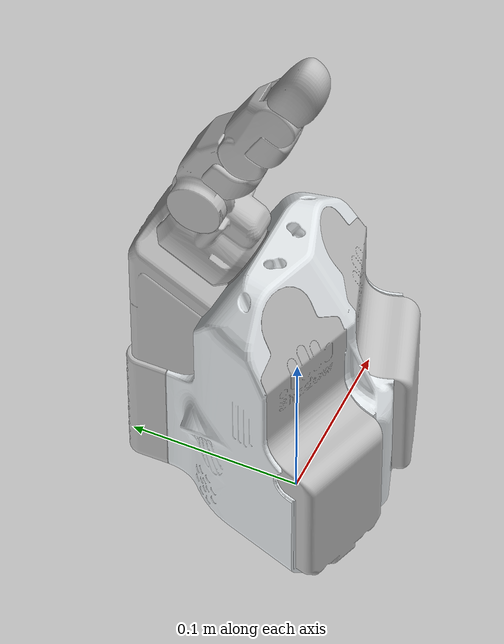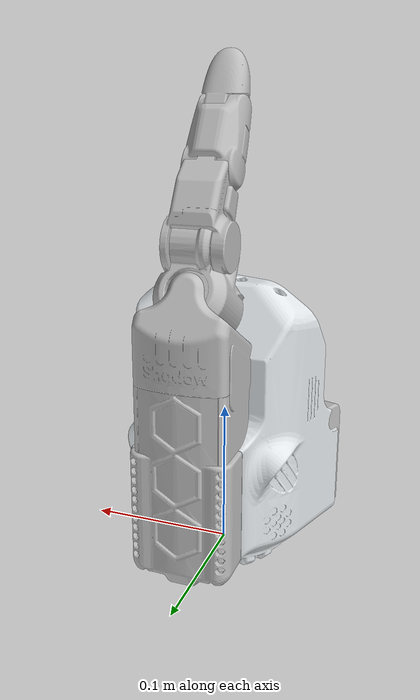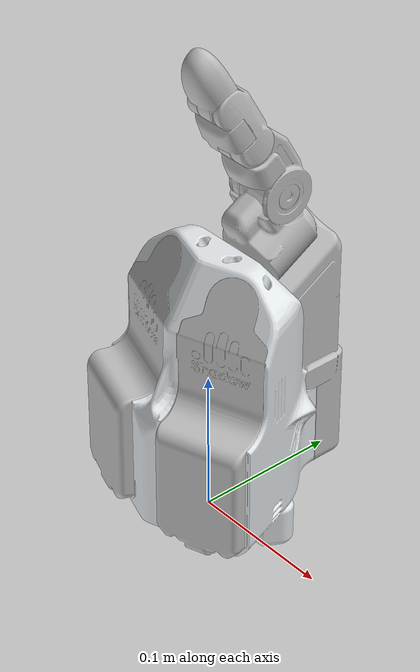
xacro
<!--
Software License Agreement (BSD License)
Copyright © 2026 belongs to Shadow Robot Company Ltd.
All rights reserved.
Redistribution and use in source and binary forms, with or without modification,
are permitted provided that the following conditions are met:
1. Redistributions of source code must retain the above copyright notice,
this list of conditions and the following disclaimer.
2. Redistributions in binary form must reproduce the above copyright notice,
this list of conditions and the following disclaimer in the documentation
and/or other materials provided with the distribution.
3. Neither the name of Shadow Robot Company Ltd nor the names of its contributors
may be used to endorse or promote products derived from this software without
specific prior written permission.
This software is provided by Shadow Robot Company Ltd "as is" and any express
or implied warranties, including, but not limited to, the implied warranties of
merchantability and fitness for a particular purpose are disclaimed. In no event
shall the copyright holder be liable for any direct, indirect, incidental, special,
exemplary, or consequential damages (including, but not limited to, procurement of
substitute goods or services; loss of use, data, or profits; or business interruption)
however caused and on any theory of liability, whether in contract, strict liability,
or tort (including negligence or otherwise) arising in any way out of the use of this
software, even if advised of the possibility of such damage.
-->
<?xml version="1.0" encoding="utf-8"?>

<robot name="dexee_config_1_hand" xmlns:xacro="http://www.ros.org/wiki/xacro">
  <xacro:include filename="$(find dx_description)/robot/0x02000106.xacro" />
  <xacro:arg name="prefix" default="" />
  <xacro:arg name="distal_type" default="magtac" />  <!-- "sparkle" or "magtac" -->
  <link name="world" />
  <joint name="$(arg prefix)world_joint" type="fixed">
    <parent link="world" />
    <child link="$(arg prefix)hand_base" />
  </joint>
  <xacro:dexee_config_1_hand prefix="$(arg prefix)" distal_type="$(arg distal_type)" />
  <gazebo>
    <plugin name="gazebo_ros_control" filename="libgazebo_ros_control.so">
    </plugin>
  </gazebo>
</robot>

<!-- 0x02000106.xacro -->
<robot name="dexee_config_1_hand" xmlns:xacro="http://ros.org/wiki/xacro">
  <xacro:macro name="dexee_config_1_hand" params="prefix:=^ distal_type:=^">
    <link name="${prefix}hand_base">
      <inertial>
        <origin xyz="0.00024269 0.0064896 0.05011689" rpy="0 0 0" />
        <mass value="0.53506724" />
        <inertia ixx="0.00235606" ixy="-0.00000318" ixz="0.00001251"
                 iyy="0.00262644" iyz="-0.00010584" izz="0.00095084" />
      </inertial>
      <visual>
        <origin xyz="0 0 0" rpy="0 0 0" />
        <geometry>
          <mesh filename="package://dx_description/meshes/hand_bases/Config_1_Hand_Base.dae" />
        </geometry>
        <material name="">
          <color rgba="0.898039215686275 0.917647058823529 0.929411764705882 1" />
        </material>
      </visual>
      <collision>
        <origin xyz="0 0 0" rpy="0 0 0" />
        <geometry>
          <mesh filename="package://dx_description/meshes/hand_bases/collision/Config_1_Hand_Base.stl" />
        </geometry>
      </collision>
    </link>
    <gazebo reference="${prefix}hand_base">
      <selfCollide>true</selfCollide>
    </gazebo>

    <!-- Create a virtual end effector link that will be useful for arm IK -->
    <link name="${prefix}end_effector"/>
    <joint name="${prefix}ee_fixed_joint" type="fixed">
      <parent link="${prefix}hand_base"/>
      <child link="${prefix}end_effector"/>
      <origin rpy="0.0 0.0 0.0" xyz="0.0 0.0 0.25"/>
    </joint>

    <xacro:include filename="$(find dx_description)/xacros/dx_e3r3_finger.xacro" />
    <xacro:macro_e3r3_finger prefix="${prefix}" finger_id="F0" parent="${prefix}hand_base">
      <origin xyz="0 0.05 0.017" rpy="-1.5707 0 0"/>
    </xacro:macro_e3r3_finger>

    <xacro:include filename="$(find dx_description)/xacros/finger_blank.xacro" />
    <xacro:macro_finger_blank prefix="${prefix}" finger_id="F1" parent="${prefix}hand_base">
      <origin xyz="0.0384 -0.0287 0.017" rpy="-1.5707 0 -2.8159"/>
    </xacro:macro_finger_blank>
    <xacro:macro_finger_blank prefix="${prefix}" finger_id="F2" parent="${prefix}hand_base">
      <origin xyz="-0.0384 -0.02870 0.017" rpy="-1.5707 0 2.8159"/>
    </xacro:macro_finger_blank>
  </xacro:macro>
</robot>

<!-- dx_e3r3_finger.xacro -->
<robot xmlns:xacro="http://ros.org/wiki/xacro">
  <xacro:macro name="macro_e3r3_finger" params="prefix:=^ distal_type:=^ finger_id parent *origin">
    <joint name="${prefix}world_joint_${finger_id}" type="fixed">
      <xacro:insert_block name="origin"/>
      <parent link="${parent}" />
      <child link="${prefix}${finger_id}_base" />
    </joint>
    <link name="${prefix}${finger_id}_base">
      <inertial>
        <origin rpy="1.5707 0 0" xyz="-1.30462232073506e-05 -0.0890545424979884 0.00045858190188918893 "/>
        <mass value="0.89937782"/>
        <inertia ixx="0.0024900529476665615" ixy="-1.0049950074763391e-07" ixz="-2.1821824210422672e-07" iyy="0.0022936902305646604" iyz="1.8955596520453447e-06" izz="0.0006773493311454545"/>
      </inertial>
      <visual>
        <origin xyz="0 0 0" rpy="1.5707 0 0" />
        <geometry>
          <mesh filename="package://dx_description/meshes/dx_e3r3_finger/F0_base.dae" />
        </geometry>
        <material name="">
          <color rgba="0.75294 0.75294 0.75294 1" />
        </material>
      </visual>
      <collision>
        <origin xyz="0 0 0" rpy="1.5707 0 0" />
        <geometry>
          <mesh filename="package://dx_description/meshes/dx_e3r3_finger/collision/F0_base.stl" />
        </geometry>
      </collision>
    </link>
    <gazebo reference="${prefix}${finger_id}_base">
      <selfCollide>true</selfCollide>
    </gazebo>
    <link name="${prefix}${finger_id}_J0_link">
      <inertial>
        <origin xyz="-0.0002171478112126603 0.062391354 0.009831462605538131"/>
        <mass value="0.13077995"/>
        <inertia ixx="6.637052873451466e-05" ixy="3.159178456487345e-08" ixz="5.047967765250655e-07" iyy="5.309491755924392e-05" iyz="-9.40024171556021e-06" izz="4.638346622651747e-05"/>
      </inertial>
      <visual>
        <origin xyz="0 0.077 0" rpy="0 0 0" />
        <geometry>
            <mesh filename="package://dx_description/meshes/dx_e3r3_finger/F0_J0_link.dae" />
        </geometry>
        <material name="">
          <color rgba="0.75294 0.75294 0.75294 1" />
        </material>
      </visual>
      <collision>
        <origin xyz="0 0.077 0" rpy="0 0 0" />
        <geometry>
            <mesh filename="package://dx_description/meshes/dx_e3r3_finger/collision/F0_J0_link.stl" />
        </geometry>
      </collision>
    </link>
    <gazebo reference="${prefix}${finger_id}_J0_link">
      <selfCollide>true</selfCollide>
    </gazebo>
    <joint name="${prefix}${finger_id}_J0" type="revolute">
      <origin xyz="0 -0.14073 -0.051327" rpy="2.0944 0 0" />
      <parent link="${prefix}${finger_id}_base" />
      <child link="${prefix}${finger_id}_J0_link" />
      <axis xyz="0 -1 0" />
      <limit lower="-0.8727" upper="0.8727" effort="1.5" velocity="3.1415" />
      <dynamics friction="0.001"/>
    </joint>
    <link name="${prefix}${finger_id}_proximal">
      <inertial>
        <origin xyz="-0.00020256 0.0024322 0.02375091" rpy="0 0 0" />
        <mass value="0.09614332" />
        <inertia ixx="0.00004332" ixy="-0.00000017" ixz="-0.00000349" iyy="0.00004756" iyz="0.00000055"
                 izz="0.00002008" />
      </inertial>
      <visual>
        <origin xyz="0 0 0" rpy="0 0 0" />
        <geometry>
            <mesh filename="package://dx_description/meshes/dx_e3r3_finger/F0_proximal.dae" />
        </geometry>
        <material name="">
          <color rgba="0.75294 0.75294 0.75294 1" />
        </material>
      </visual>
      <collision>
        <origin xyz="0 0 0" rpy="0 0 0" />
        <geometry>
          <mesh filename="package://dx_description/meshes/dx_e3r3_finger/collision/F0_proximal.stl" />
        </geometry>
      </collision>
    </link>
    <gazebo reference="${prefix}${finger_id}_proximal">
      <selfCollide>true</selfCollide>
    </gazebo>
    <joint name="${prefix}${finger_id}_J1" type="revolute">
      <origin xyz="0 0.0765883365730207 0.0299999999999999" rpy="0 0 0" />
      <parent link="${prefix}${finger_id}_J0_link" />
      <child link="${prefix}${finger_id}_proximal" />
      <axis xyz="1 0 0" />
      <limit lower="-1.396" upper="0.785" effort="1.2" velocity="3.1415" />
      <dynamics friction="0.001"/>
    </joint>
    <link name="${prefix}${finger_id}_middle">
      <inertial>
        <origin xyz="-0.00026744 -0.00004338 0.01669764" rpy="0 0 0" />
        <mass value="0.05585897" />
        <inertia ixx="0.00001447" ixy="-0.00000005" ixz="-0.00000004" iyy="0.00001686" iyz="-0.00000007"
                 izz="0.00000973" />
      </inertial>
      <visual>
        <origin xyz="0 0 0" rpy="0 0 0" />
        <geometry>
            <mesh filename="package://dx_description/meshes/dx_e3r3_finger/F0_middle.dae" />
        </geometry>
        <material name="">
          <color rgba="0.75294 0.75294 0.75294 1" />
        </material>
      </visual>
      <collision>
        <origin xyz="0 0 0" rpy="0 0 0" />
        <geometry>
          <mesh filename="package://dx_description/meshes/dx_e3r3_finger/collision/F0_middle.stl" />
        </geometry>
      </collision>
    </link>
    <gazebo reference="${prefix}${finger_id}_middle">
      <selfCollide>true</selfCollide>
    </gazebo>
    <joint name="${prefix}${finger_id}_J2" type="revolute">
      <origin xyz="0 0 0.05" rpy="0 0 0" />
      <parent link="${prefix}${finger_id}_proximal" />
      <child link="${prefix}${finger_id}_middle" />
      <axis xyz="1 0 0" />
      <limit lower="0" upper="1.396" effort="0.7" velocity="3.1415" />
      <dynamics friction="0.001"/>
    </joint>
    <xacro:include filename="$(find dx_description)/xacros/distals/${distal_type}.xacro" />
    <xacro:macro_e3r3_distal parent="${prefix}${finger_id}_middle"/>
    <!-- These transmissions are wrongly configured and fail to be loaded by the real robot -->
    <!-- We still need to define them in order to be able to launch the robot in simulation -->
    <transmission name="trans_${prefix}${finger_id}_J0">
      <type>UnusedTransmission</type>
      <joint name="${prefix}${finger_id}_J0">
        <hardwareInterface>hardware_interface/EffortJointInterface</hardwareInterface>
      </joint>
      <actuator name="${prefix}${finger_id}_J0_motor">
        <mechanicalReduction>1</mechanicalReduction>
      </actuator>
    </transmission>
    <transmission name="trans_${prefix}${finger_id}_J1">
      <type>UnusedTransmission</type>
      <joint name="${prefix}${finger_id}_J1">
        <hardwareInterface>hardware_interface/EffortJointInterface</hardwareInterface>
      </joint>
      <actuator name="${prefix}${finger_id}_J1_motor">
        <mechanicalReduction>1</mechanicalReduction>
      </actuator>
    </transmission>
    <transmission name="trans_${prefix}${finger_id}_J2">
      <type>UnusedTransmission</type>
      <joint name="${prefix}${finger_id}_J2">
        <hardwareInterface>hardware_interface/EffortJointInterface</hardwareInterface>
      </joint>
      <actuator name="${prefix}${finger_id}_J2_motor">
        <mechanicalReduction>1</mechanicalReduction>
      </actuator>
    </transmission>
    <transmission name="trans_${prefix}${finger_id}_J3">
      <type>UnusedTransmission</type>
      <joint name="${prefix}${finger_id}_J3">
        <hardwareInterface>hardware_interface/EffortJointInterface</hardwareInterface>
      </joint>
      <actuator name="${prefix}${finger_id}_J3_motor">
        <mechanicalReduction>1</mechanicalReduction>
      </actuator>
    </transmission>
  </xacro:macro>
</robot>

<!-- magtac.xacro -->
<robot xmlns:xacro="http://ros.org/wiki/xacro">
  <xacro:macro name="macro_e3r3_distal" params="prefix:=^ finger_id:=^ parent">
    <link name="${prefix}${finger_id}_distal">
      <inertial>
        <origin xyz="0.00084325 0.00164346 0.01482169" rpy="0 0 0" />
        <mass value="0.02766365" />
        <inertia ixx="0.0000051" ixy="0" ixz="0.00000028" iyy="0.00000506" iyz="-0.00000034" izz="0.00000198" />
      </inertial>
      <visual>
        <origin xyz="0 0 0" rpy="-1.57079633 0 0" />
        <geometry>
            <mesh filename="package://dx_description/meshes/distals/magtac.dae" />
        </geometry>
        <material name="">
          <color rgba="0.75294 0.75294 0.75294 1" />
        </material>
      </visual>
      <collision>
        <origin xyz="0 0 0" rpy="-1.57079633 0 0" />
        <geometry>
          <mesh filename="package://dx_description/meshes/distals/collision/magtac.stl" />
        </geometry>
      </collision>
    </link>
    <gazebo reference="${prefix}${finger_id}_distal">
      <selfCollide>true</selfCollide>
    </gazebo>
    <joint name="${prefix}${finger_id}_J3" type="revolute">
      <origin xyz="0 0 0.035" rpy="0 0 0" />
      <parent link="${parent}" />
      <child link="${prefix}${finger_id}_distal" />
      <axis xyz="1 0 0" />
      <limit lower="-0.523" upper="1.485" effort="0.35" velocity="3.1415" />
      <dynamics friction="0.001"/>
    </joint>
    <link name="${prefix}${finger_id}_tip" />
    <joint name="${prefix}${finger_id}_distal_tip" type="fixed">
        <parent link="${prefix}${finger_id}_distal" />
        <child link="${prefix}${finger_id}_tip" />
        <origin xyz="0 0.003 0.033" rpy="0 0 0" />
    </joint>
  </xacro:macro>
</robot>

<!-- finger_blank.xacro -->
<robot xmlns:xacro="http://ros.org/wiki/xacro">
  <xacro:macro name="macro_finger_blank" params="prefix:=^ finger_id parent *origin">
    <joint name="${prefix}world_joint_${finger_id}" type="fixed">
      <xacro:insert_block name="origin"/>
      <parent link="${parent}" />
      <child link="${prefix}${finger_id}_base" />
    </joint>
    <link name="${prefix}${finger_id}_base">
      <inertial>
        <origin rpy="1.5707 0 0" xyz="0.00008 -0.092 -0.00062"/>
        <mass value="0.04087"/>
        <inertia ixx="0.0004534284" ixy="-4.3115e-07" ixz="-3.57299999e-08" iyy="0.0000246748" iyz="0.0000321231" izz="0.0004555261"/>
      </inertial>
      <visual>
        <origin xyz="0 0 0" rpy="1.5707 0 0" />
        <geometry>
          <mesh filename="package://dx_description/meshes/extras/Finger_blank.dae" />
        </geometry>
        <material name="">
          <color rgba="0.75294 0.75294 0.75294 1" />
        </material>
      </visual>
      <collision>
        <origin xyz="0 0 0" rpy="1.5707 0 0" />
        <geometry>
          <mesh filename="package://dx_description/meshes/extras/collision/Finger_blank.stl" />
        </geometry>
      </collision>
    </link>
    <gazebo reference="${prefix}${finger_id}_base">
      <selfCollide>true</selfCollide>
    </gazebo>
  </xacro:macro>
</robot>
